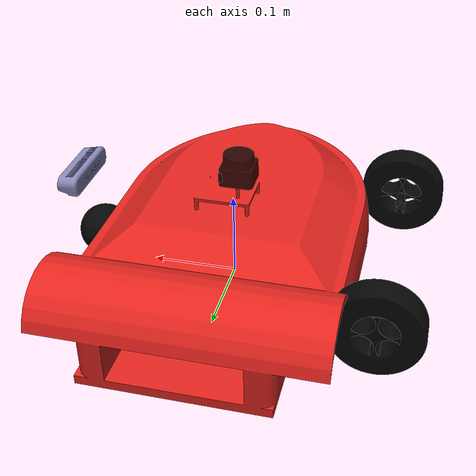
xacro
<?xml version="1.0" encoding="utf-8"?>
<robot xmlns:xacro="http://www.ros.org/wiki/xacro" name="zavaquin">

  <material name="dark">
    <color rgba="0.01960784313 0.01960784313 0.01960784313 1.0" />
  </material>

  <material name="red">
    <color rgba="0.89019607843 0.14509803921 0.12156862745 1.0" />
  </material>

  <link name="base_footprint"/>

  <joint name="base_footprint_to_base_link" type="fixed">
    <origin xyz="0 0 0.016" rpy="0 0 0" />
    <parent link="base_footprint" />
    <child link="base_link" />
  </joint>

  <link name="base_link">
    <inertial>
      <origin xyz="-0.0021958 -0.00035059 0.044357" rpy="0 0 0" />
      <mass value="4.4576232231282" />
      <inertia ixx="0.029793" ixy="2.1519E-05" ixz="3.5124E-05" iyy="0.044269" iyz="-2.2708E-07" izz="0.072501" />
    </inertial>
    <visual>
      <origin xyz="0 0 0" rpy="0 0 0" />
      <geometry>
        <mesh filename="package://zavaquin_description/meshes/base_link.STL" />
      </geometry>
      <material name="red" />
    </visual>
    <collision>
      <origin xyz="0 0 0" rpy="0 0 0" />
      <geometry>
        <mesh filename="package://zavaquin_description/meshes/base_link.STL" />
      </geometry>
    </collision>
  </link>

  <link name="wheel_left_link">
    <inertial>
      <origin xyz="2.7756E-17 0 -0.015154" rpy="0 0 0" />
      <mass value="0.190866532892921" />
      <inertia ixx="0.00015375" ixy="-1.8747E-21" ixz="-1.2515E-19" iyy="0.00015375" iyz="-2.3486E-21" izz="0.00027772" />
    </inertial>
    <visual>
      <origin xyz="0 0 0" rpy="0 0 0" />
      <geometry>
        <mesh filename="package://zavaquin_description/meshes/wheel_left_link.STL" />
      </geometry>
      <material name="dark" />
    </visual>
    <collision>
      <origin xyz="0 0 0" rpy="0 0 0" />
      <geometry>
        <mesh filename="package://zavaquin_description/meshes/wheel_left_link.STL" />
      </geometry>
    </collision>
  </link>

  <joint name="wheel_left_joint" type="continuous">
    <origin xyz="-0.18268 0.14819 0.04" rpy="-1.5708 0 0" />
    <parent link="base_link" />
    <child link="wheel_left_link" />
    <axis xyz="0 0 1" />
  </joint>

  <link name="wheel_right_link">
    <inertial>
      <origin xyz="-2.7756E-17 0 0.015154" rpy="0 0 0" />
      <mass value="0.190866532892921" />
      <inertia ixx="0.00015375" ixy="-1.4203E-21" ixz="-1.2479E-19" iyy="0.00015375" iyz="-2.4414E-21" izz="0.00027772" />
    </inertial>
    <visual>
      <origin xyz="0 0 0" rpy="0 0 0" />
      <geometry>
        <mesh filename="package://zavaquin_description/meshes/wheel_right_link.STL" />
      </geometry>
      <material name="dark" />
    </visual>
    <collision>
      <origin xyz="0 0 0" rpy="0 0 0" />
      <geometry>
        <mesh filename="package://zavaquin_description/meshes/wheel_right_link.STL" />
      </geometry>
    </collision>
  </link>

  <joint name="wheel_right_joint" type="continuous">
    <origin xyz="-0.18268 -0.15181 0.04" rpy="-1.5708 0 0" />
    <parent link="base_link" />
    <child link="wheel_right_link" />
    <axis xyz="0 0 1" />
  </joint>

  <link name="caster_wheel_link">
    <inertial>
      <origin xyz="-2.7756E-17 0 2.7756E-17" rpy="0 0 0" />
      <mass value="0.113097335529233" />
      <inertia ixx="4.0715E-05" ixy="1.9437E-37" ixz="0" iyy="4.0715E-05" iyz="-1.2465E-21" izz="4.0715E-05" />
    </inertial>
    <visual>
      <origin xyz="0 0 0" rpy="0 0 0" />
      <geometry>
        <mesh filename="package://zavaquin_description/meshes/caster_wheel_link.STL" />
      </geometry>
      <material name="dark" />
    </visual>
    <collision>
      <origin xyz="0 0 0" rpy="0 0 0" />
      <geometry>
        <mesh filename="package://zavaquin_description/meshes/caster_wheel_link.STL" />
      </geometry>
    </collision>
  </link>

  <joint name="caster_wheel_joint" type="fixed">
    <origin xyz="0.16235 -4.4845E-05 0.018397" rpy="0 0 0" />
    <parent link="base_link" />
    <child link="caster_wheel_link" />
    <axis xyz="0 0 0" />
    <dynamics damping="0.01" friction="0.0"/>
  </joint>

  <!-- Configuration Wheels -->
  <gazebo reference="wheel_left_link">
    <mu1>10000.0</mu1>
    <mu2>10000.0</mu2>
    <kp>3000000.0</kp>
    <kd>90.0</kd>
    <minDepth>0.001</minDepth>
    <maxVel>0.1</maxVel>
    <fdir1>1 0 0</fdir1>
  </gazebo>

  <gazebo reference="wheel_right_link">
    <mu1>10000.0</mu1>
    <mu2>10000.0</mu2>
    <kp>3000000.0</kp>
    <kd>90.0</kd>
    <minDepth>0.001</minDepth>
    <maxVel>0.1</maxVel>
    <fdir1>1 0 0</fdir1>
  </gazebo>

  <gazebo reference="caster_wheel_link">
    <mu1>0.1</mu1>
    <mu2>0.1</mu2>
  </gazebo>

  <gazebo>
    <plugin name="zavaquin_joint_state" filename="libgazebo_ros_joint_state_publisher.so">
      <ros>
        <remapping>~/out:=joint_states</remapping>
        <remapping>/tf:=tf</remapping>
      </ros>
      <update_rate>30</update_rate>
      <joint_name>wheel_right_joint</joint_name>
      <joint_name>wheel_left_joint</joint_name>
      <joint_name>caster_wheel_joint</joint_name>
    </plugin>

    <plugin name="zavaquin_diff_drive" filename="libgazebo_ros_diff_drive.so">
      <ros>
        <namespace></namespace>
        <remapping>cmd_vel:=cmd_vel</remapping>
        <remapping>odom:=odom</remapping>
      </ros>

      <!-- Wheel information -->
      <update_rate>1</update_rate>
      <left_joint>wheel_left_joint</left_joint>
      <right_joint>wheel_right_joint</right_joint>
      <wheel_separation>0.270</wheel_separation>
      <wheel_diameter>0.100</wheel_diameter>

      <!-- Limits (can be adjusted later on)-->
      <max_wheel_torque>20</max_wheel_torque>
      <max_wheel_acceleration>2</max_wheel_acceleration>

      <!-- Output -->
      <odometry_frame>odom</odometry_frame>
      <robot_base_frame>base_footprint</robot_base_frame>
      <publish_odom>true</publish_odom>
      <publish_odom_tf>true</publish_odom_tf>
      <publish_wheel_tf>true</publish_wheel_tf>

    </plugin>
  </gazebo>

  <xacro:include filename="$(find zavaquin_description)/urdf/sensors/camera.xacro"/>
  <xacro:include filename="$(find zavaquin_description)/urdf/sensors/imu.xacro"/>
  <xacro:include filename="$(find zavaquin_description)/urdf/sensors/lidar.xacro"/>
  <xacro:include filename="$(find zavaquin_gazebo)/urdf/include/zavaquin_materials.xacro"/>
</robot>

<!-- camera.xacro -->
<robot xmlns:xacro="http://ros.org/wiki/xacro">
    <!-- Colors -->
    <material name="purple">
        <color rgba="0.54117647058 0.54117647058 0.7294117647 1.0" />
    </material>
    <!-- Camera -->
    <link name="camera_link">
        <inertial>
            <origin xyz="0.0096524 1.8386E-05 -0.0001635" rpy="0 0 0" />
            <mass value="0.0332100658718068" />
            <inertia ixx="2.2713E-05" ixy="-6.7066E-09" ixz="1.8203E-08" iyy="2.6959E-06" iyz="-9.9063E-12" izz="2.2486E-05" />
        </inertial>
        <visual>
            <origin xyz="0 0 0" rpy="0 0 0" />
            <geometry>
                <mesh filename="package://zavaquin_description/meshes/camera_link.STL" />
            </geometry>
            <material name="purple" />
        </visual>
        <collision>
            <origin xyz="0 0 0" rpy="0 0 0" />
            <geometry>
                <mesh filename="package://zavaquin_description/meshes/camera_link.STL" />
            </geometry>
        </collision>
    </link>

  <joint name="camera_joint" type="fixed">
    <origin xyz="0.17103 0.00039991 0.097276" rpy="0 0 0"/>
    <parent link="base_link"/>
    <child link="camera_link"/>
    <axis xyz="0 0 0"/>
  </joint>

  <gazebo reference="camera_link">

    <sensor name="camera" type="camera">
        <pose> 0 0 0 0 0 0 </pose>
        <visualize>false</visualize>
        <update_rate>10</update_rate>
        <camera>
            <horizontal_fov>0.934</horizontal_fov>
            <image>
                <format>R8G8B8</format>
                <width>640</width>
                <height>480</height>
            </image>
            <clip>
                <near>0.05</near>
                <far>8.0</far>
            </clip>
        </camera>
        <plugin name="camera_controller" filename="libgazebo_ros_camera.so">
            <frame_name>camera_link</frame_name>
        </plugin>
    </sensor>
  </gazebo>

</robot>

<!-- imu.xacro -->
<robot xmlns:xacro="http://ros.org/wiki/xacro">
    <!-- Imu sensor  -->
    <link name="imu_link" />

    <joint name="imu_joint" type="fixed">
        <origin xyz="0 0 0" rpy="0 0 0"/>
        <parent link="base_link"/>
        <child link="imu_link"/>
        <origin xyz="-0.0390281436839592 0.0549871759093349 0.010774999999999" rpy="0 0 0"/>
        <axis xyz="0 0 0" />
    </joint>

    <gazebo reference="imu_link">
        <sensor name="mpu6050_imu" type="imu">
            <plugin name="imu_controller" filename="libgazebo_ros_imu_sensor.so">
                <frame_name>imu_link</frame_name>
                <ros>
                    <remapping>~/out:=/imu</remapping>
                </ros>
                <initial_orientation_as_reference>true</initial_orientation_as_reference>
            </plugin>
            <always_on>true</always_on>
            <update_rate>200</update_rate>
            <visualize>false</visualize>
            <imu>
                <angular_velocity>
                    <x>
                    <noise type="gaussian">
                        <mean>0.0</mean>
                        <stddev>2e-4</stddev>
                    </noise>
                    </x>
                    <y>
                    <noise type="gaussian">
                        <mean>0.0</mean>
                        <stddev>2e-4</stddev>
                    </noise>
                    </y>
                    <z>
                    <noise type="gaussian">
                        <mean>0.0</mean>
                        <stddev>2e-4</stddev>
                    </noise>
                    </z>
                </angular_velocity>
                <linear_acceleration>
                    <x>
                    <noise type="gaussian">
                        <mean>0.0</mean>
                        <stddev>1.7e-2</stddev>
                    </noise>
                    </x>
                    <y>
                    <noise type="gaussian">
                        <mean>0.0</mean>
                        <stddev>1.7e-2</stddev>
                    </noise>
                    </y>
                    <z>
                    <noise type="gaussian">
                        <mean>0.0</mean>
                        <stddev>1.7e-2</stddev>
                    </noise>
                    </z>
                </linear_acceleration>
                <orientation>
                    <x>
                    <noise type="gaussian">
                        <mean>0.0</mean>
                        <stddev>2e-3</stddev>
                    </noise>
                    </x>
                    <y>
                    <noise type="gaussian">
                        <mean>0.0</mean>
                        <stddev>2e-3</stddev>
                    </noise>
                    </y>
                    <z>
                    <noise type="gaussian">
                        <mean>0.0</mean>
                        <stddev>2e-3</stddev>
                    </noise>
                    </z>
                </orientation>
            </imu>
        </sensor>
    </gazebo>

</robot>

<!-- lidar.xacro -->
<robot xmlns:xacro="http://ros.org/wiki/xacro">

    <link name="laser_link">
        <inertial>
            <origin xyz="-0.00010905 1.1005E-05 0.01528" rpy="0 0 0" />
            <mass value="0.0402897893770633" />
            <inertia ixx="7.6882E-06" ixy="9.9276E-08" ixz="-5.2615E-08" iyy="7.6164E-06" iyz="5.599E-09" izz="8.2845E-06" />
        </inertial>
        <visual>
            <origin xyz="0 0 0" rpy="0 0 0" />
            <geometry>
              <mesh filename="package://zavaquin_description/meshes/laser_link.STL" />
            </geometry>
            <material name="dark">
                <color rgba="0.01960784313 0.01960784313 0.01960784313 0.8" />
            </material>
        </visual>
        <collision>
            <origin xyz="0 0 0" rpy="0 0 0" />
            <geometry>
                <mesh filename="package://zavaquin_description/meshes/laser_link.STL" />
            </geometry>
        </collision>
   </link>

    <joint name="laser_joint" type="fixed">
        <origin xyz="-0.0075649 0.0030503 0.112" rpy="0 0 0"/>
        <parent link="base_link"/>
        <child link="laser_link"/>
        <axis xyz="0 0 0"/>
    </joint>

    <gazebo reference="laser_link">
        <sensor name="lidar" type="ray">
            <pose>0 0 0 0 0 0</pose>
            <always_on>true</always_on>
            <visualize>true</visualize>
            <update_rate>10</update_rate>
            <ray>
                <scan>
                    <horizontal>
                        <samples>360</samples>
                        <min_angle>-3.14</min_angle>
                        <max_angle>3.14</max_angle>
                    </horizontal>
                </scan>
                <range>
                    <min>0.15</min>
                    <max>6.0</max>
                    <resolution>0.01500</resolution>
		        </range>
                <noise>
                    <type>gaussian</type>
                    <mean>0.0</mean>
                    <stddev>0.01</stddev>
                </noise>
            </ray>
            <plugin name="lidar_controller" filename="libgazebo_ros_ray_sensor.so">
                <ros>
                    <remapping>~/out:=scan</remapping>
                </ros>
                <output_type>sensor_msgs/LaserScan</output_type>
                <frame_name>laser_link</frame_name>
            </plugin>
        </sensor>
    </gazebo>

</robot>
